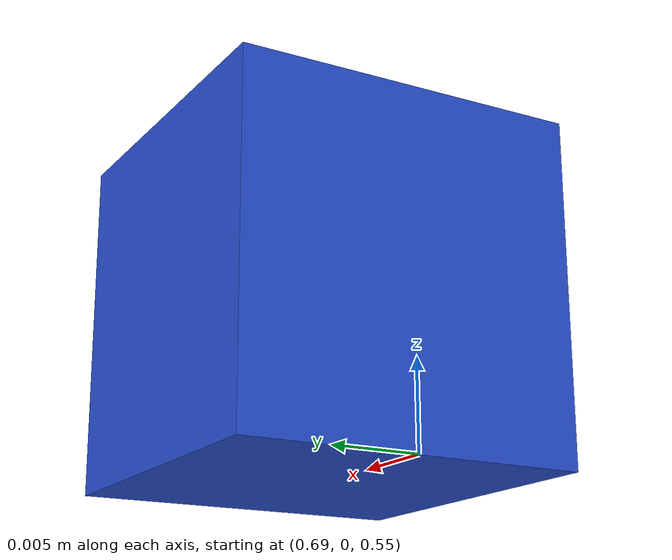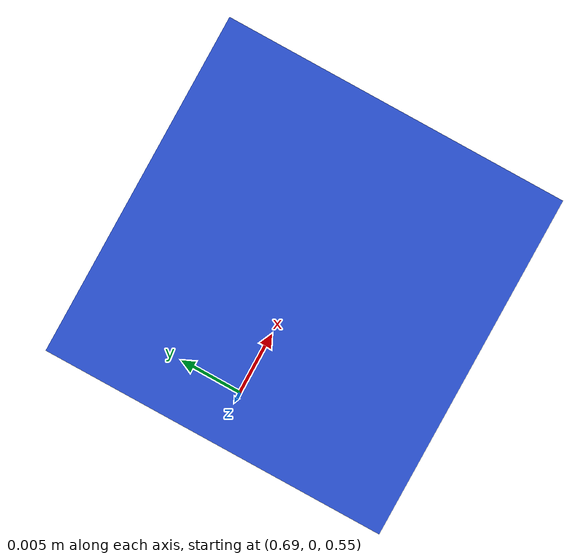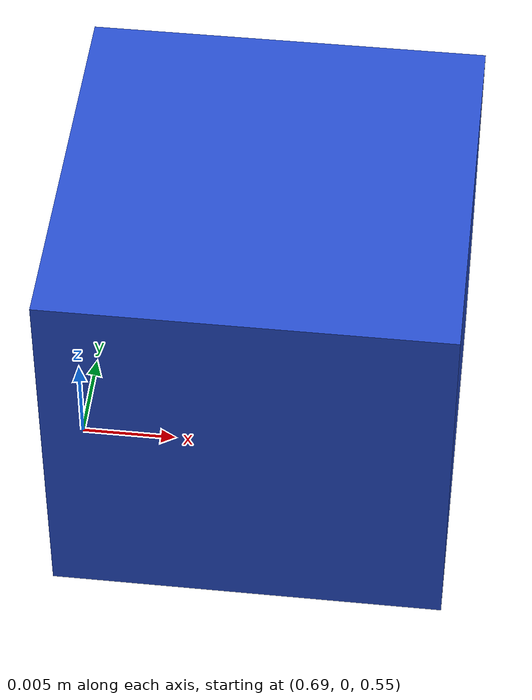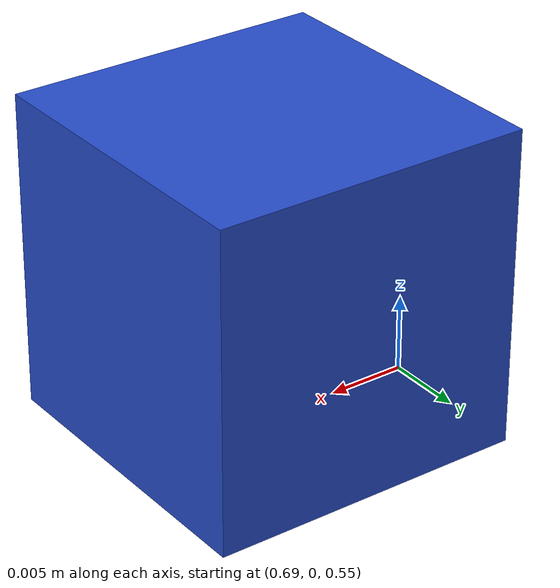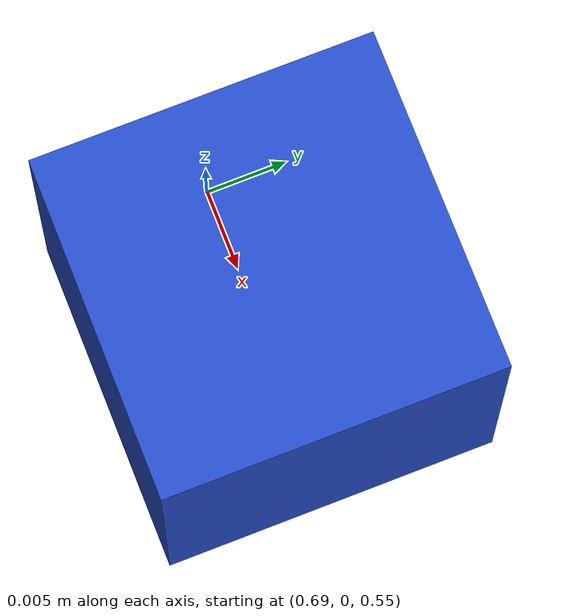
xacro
<?xml version="1.0" encoding="UTF-8"?>
<robot xmlns:xacro="http://www.ros.org/wiki/xacro">
  <link name="my_box">
    <inertial>
      <origin xyz="2 0 0" />
      <mass value="1.0" />
      <inertia  ixx="1.0" ixy="0.0"  ixz="0.0"  iyy="100.0"  iyz="0.0"  izz="1.0" />
    </inertial>
    <visual>
      <origin xyz="0.7 0 0.56"/>
      <geometry>
        <box size="0.02 0.02 0.02" />
      </geometry>
    </visual>
    <collision>
      <origin xyz="0.7 0 0.56"/>
      <geometry>
        <box size="0.02 0.02 0.02" />
      </geometry>
    </collision>
  </link>
  <gazebo reference="my_box">
    <material>Gazebo/Blue</material>
  </gazebo>
</robot>
